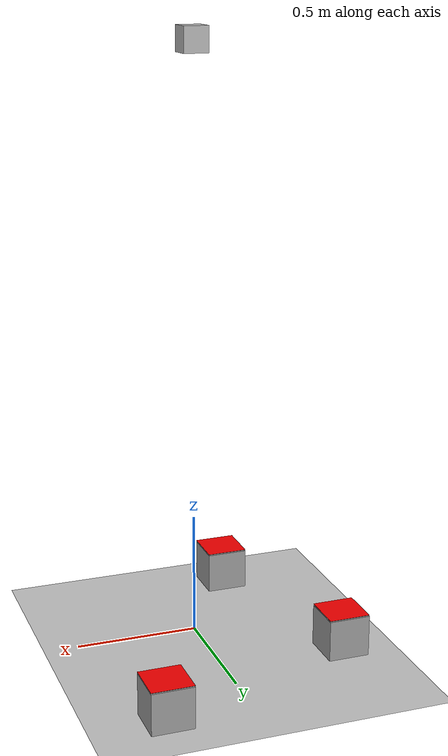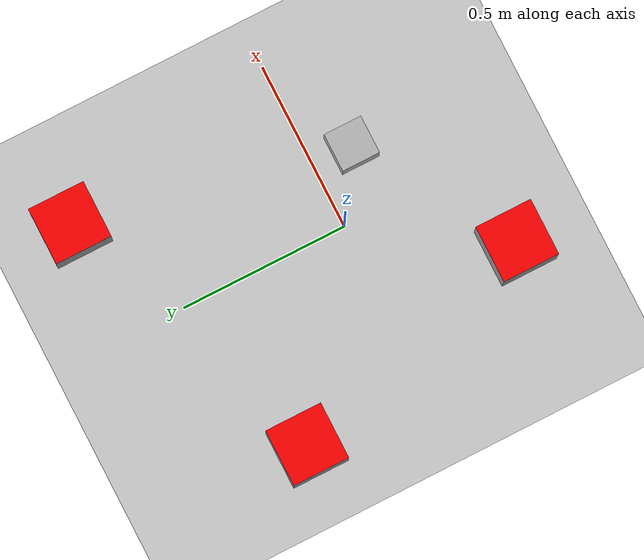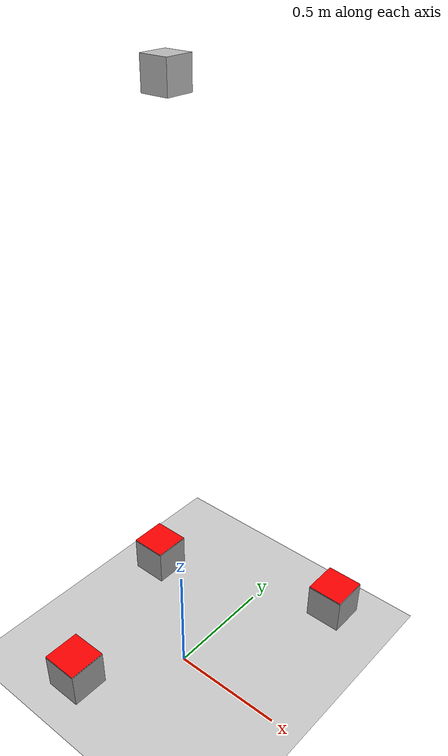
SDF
<sdf version="1.7">
 <world name="default">
  <light name="sun" type="directional">
   <pose>0 0 10 0 -0 0</pose>
   <diffuse>0.8 0.8 0.8 1</diffuse>
   <specular>0.2 0.2 0.2 1</specular>
   <attenuation>
    <range>1000</range>
    <constant>0.9</constant>
    <linear>0.01</linear>
    <quadratic>0.001</quadratic>
   </attenuation>
   <direction>-0.5 0.1 -0.9</direction>
   <spot><inner_angle>0</inner_angle><outer_angle>0</outer_angle><falloff>0</falloff></spot>
  </light>
  <model name="ground_plane">
   <static>1</static>
   <link name="link">
    <collision name="collision">
     <geometry><plane><normal>0 0 1</normal><size>100 100</size></plane></geometry>
     <surface>
      <contact><collide_bitmask>65535</collide_bitmask></contact>
      <friction><ode><mu>100</mu><mu2>50</mu2></ode></friction>
     </surface>
    </collision>
    <visual name="visual">
     <cast_shadows>0</cast_shadows>
     <geometry><plane><normal>0 0 1</normal><size>100 100</size></plane></geometry>
     <material>
      <script><uri>file://media/materials/scripts/gazebo.material</uri><name>Gazebo/Grey</name></script>
     </material>
    </visual>
   </link>
  </model>
  <gravity>0 0 -9.8</gravity>
  <magnetic_field>6e-06 2.3e-05 -4.2e-05</magnetic_field>
  <atmosphere type="adiabatic"/>
  <physics type="ode">
   <max_step_size>0.001</max_step_size>
   <real_time_factor>1</real_time_factor>
   <real_time_update_rate>1000</real_time_update_rate>
  </physics>
  <scene><ambient>0.4 0.4 0.4 1</ambient><background>0.7 0.7 0.7 1</background><shadows>1</shadows></scene>
  <spherical_coordinates>
   <surface_model>EARTH_WGS84</surface_model>
   <latitude_deg>0</latitude_deg>
   <longitude_deg>0</longitude_deg>
   <elevation>0</elevation>
   <heading_deg>0</heading_deg>
  </spherical_coordinates>
  <model name="camera">
   <static>1</static>
   <pose>-1e-05 0 2.41165 7e-06 1.57079 7e-06</pose>
   <link name="link">
    <inertial>
     <mass>0.1</mass>
     <inertia>
      <ixx>0.000166667</ixx>
      <iyy>0.000166667</iyy>
      <izz>0.000166667</izz>
      <ixy>0</ixy>
      <ixz>0</ixz>
      <iyz>0</iyz>
     </inertia>
    </inertial>
    <collision name="collision"><geometry><box><size>0.1 0.1 0.1</size></box></geometry></collision>
    <visual name="visual"><geometry><box><size>0.1 0.1 0.1</size></box></geometry></visual>
    <sensor name="camera" type="camera">
     <update_rate>30</update_rate>
     <camera name="head">
      <horizontal_fov>1.39626</horizontal_fov>
      <image><width>800</width><height>800</height><format>R8G8B8</format></image>
      <clip><near>0.02</near><far>300</far></clip>
      <noise><type>gaussian</type><mean>0</mean><stddev>0.007</stddev></noise>
     </camera>
     <plugin name="camera_controller" filename="libgazebo_ros_camera.so">
      <alwaysOn>1</alwaysOn>
      <updateRate>0.0</updateRate>
      <cameraName>rrbot/camera1</cameraName>
      <imageTopicName>image_raw</imageTopicName>
      <cameraInfoTopicName>camera_info</cameraInfoTopicName>
      <frameName>camera_link</frameName>
      <hackBaseline>0.07</hackBaseline>
      <distortionK1>0.0</distortionK1>
      <distortionK2>0.0</distortionK2>
      <distortionK3>0.0</distortionK3>
      <distortionT1>0.0</distortionT1>
      <distortionT2>0.0</distortionT2>
     </plugin>
    </sensor>
   </link>
  </model>
  <model name="obstacle">
   <link name="link">
    <inertial>
     <mass>9.826</mass>
     <inertia>
      <ixx>0.0473286</ixx>
      <ixy>0</ixy>
      <ixz>0</ixz>
      <iyy>0.0473286</iyy>
      <iyz>0</iyz>
      <izz>0.0473286</izz>
     </inertia>
    </inertial>
    <visual name="ModelPreview_8::link::visual_1">
     <geometry><box><size>0.17 0.17 0.001</size></box></geometry>
     <material>
      <script><name>Gazebo/Grey</name><uri>file://media/materials/scripts/gazebo.material</uri></script>
      <shader type="pixel"><normal_map>__default__</normal_map></shader>
      <ambient>1 0 0 1</ambient>
      <diffuse>1 0 0 1</diffuse>
      <specular>1 0 0 1</specular>
      <emissive>1 0 0 1</emissive>
     </material>
     <pose>0 0 0.09 0 -0 0</pose>
    </visual>
    <visual name="visual">
     <geometry><box><size>0.17 0.17 0.170001</size></box></geometry>
     <material>
      <script><name>Gazebo/Grey</name><uri>file://media/materials/scripts/gazebo.material</uri></script>
      <shader type="pixel"><normal_map>__default__</normal_map></shader>
      <ambient>0.3 0.3 0.3 1</ambient>
      <diffuse>0.7 0.7 0.7 1</diffuse>
      <specular>0.01 0.01 0.01 1</specular>
      <emissive>0 0 0 1</emissive>
     </material>
    </visual>
    <collision name="collision">
     <geometry><box><size>0.17 0.17 0.17</size></box></geometry>
     <surface>
      <friction>
       <ode><mu>1</mu><mu2>1</mu2><fdir1>0 0 0</fdir1><slip1>0</slip1><slip2>0</slip2></ode>
       <torsional>
        <coefficient>1</coefficient>
        <patch_radius>0</patch_radius>
        <surface_radius>0</surface_radius>
        <use_patch_radius>1</use_patch_radius>
        <ode><slip>0</slip></ode>
       </torsional>
      </friction>
      <bounce><restitution_coefficient>0</restitution_coefficient><threshold>1e+06</threshold></bounce>
      <contact>
       <collide_without_contact>0</collide_without_contact>
       <collide_without_contact_bitmask>1</collide_without_contact_bitmask>
       <collide_bitmask>1</collide_bitmask>
       <ode>
        <soft_cfm>0</soft_cfm>
        <soft_erp>0.2</soft_erp>
        <kp>1e+13</kp>
        <kd>1</kd>
        <max_vel>0.01</max_vel>
        <min_depth>0</min_depth>
       </ode>
       <bullet>
        <split_impulse>1</split_impulse>
        <split_impulse_penetration_threshold>-0.01</split_impulse_penetration_threshold>
        <soft_cfm>0</soft_cfm>
        <soft_erp>0.2</soft_erp>
        <kp>1e+13</kp>
        <kd>1</kd>
       </bullet>
      </contact>
     </surface>
    </collision>
   </link>
   <static>0</static>
   <pose>0.341692 0.675504 0.085 0 -0 0</pose>
  </model>
  <model name="obstacle_1">
   <link name="link">
    <inertial>
     <mass>9.826</mass>
     <inertia>
      <ixx>0.0473286</ixx>
      <ixy>0</ixy>
      <ixz>0</ixz>
      <iyy>0.0473286</iyy>
      <iyz>0</iyz>
      <izz>0.0473286</izz>
     </inertia>
    </inertial>
    <visual name="visual">
     <geometry><box><size>0.17 0.17 0.170001</size></box></geometry>
     <material>
      <script><name>Gazebo/Grey</name><uri>file://media/materials/scripts/gazebo.material</uri></script>
      <shader type="pixel"><normal_map>__default__</normal_map></shader>
      <ambient>0.3 0.3 0.3 1</ambient>
      <diffuse>0.7 0.7 0.7 1</diffuse>
      <specular>0.01 0.01 0.01 1</specular>
      <emissive>0 0 0 1</emissive>
     </material>
    </visual>
    <visual name="ModelPreview_8::link::visual_1">
     <geometry><box><size>0.17 0.17 0.001</size></box></geometry>
     <material>
      <script><name>Gazebo/Grey</name><uri>file://media/materials/scripts/gazebo.material</uri></script>
      <shader type="pixel"><normal_map>__default__</normal_map></shader>
      <ambient>1 0 0 1</ambient>
      <diffuse>1 0 0 1</diffuse>
      <specular>1 0 0 1</specular>
      <emissive>1 0 0 1</emissive>
     </material>
     <pose>0 0 0.09 0 -0 0</pose>
    </visual>
    <collision name="collision">
     <geometry><box><size>0.17 0.17 0.17</size></box></geometry>
     <surface>
      <friction>
       <ode><mu>1</mu><mu2>1</mu2><fdir1>0 0 0</fdir1><slip1>0</slip1><slip2>0</slip2></ode>
       <torsional>
        <coefficient>1</coefficient>
        <patch_radius>0</patch_radius>
        <surface_radius>0</surface_radius>
        <use_patch_radius>1</use_patch_radius>
        <ode><slip>0</slip></ode>
       </torsional>
      </friction>
      <bounce><restitution_coefficient>0</restitution_coefficient><threshold>1e+06</threshold></bounce>
      <contact>
       <collide_without_contact>0</collide_without_contact>
       <collide_without_contact_bitmask>1</collide_without_contact_bitmask>
       <collide_bitmask>1</collide_bitmask>
       <ode>
        <soft_cfm>0</soft_cfm>
        <soft_erp>0.2</soft_erp>
        <kp>1e+13</kp>
        <kd>1</kd>
        <max_vel>0.01</max_vel>
        <min_depth>0</min_depth>
       </ode>
       <bullet>
        <split_impulse>1</split_impulse>
        <split_impulse_penetration_threshold>-0.01</split_impulse_penetration_threshold>
        <soft_cfm>0</soft_cfm>
        <soft_erp>0.2</soft_erp>
        <kp>1e+13</kp>
        <kd>1</kd>
       </bullet>
      </contact>
     </surface>
    </collision>
   </link>
   <static>0</static>
   <pose>-0.499952 0.371651 0.084998 -1e-05 1.1e-05 7e-06</pose>
  </model>
  <model name="obstacle_3">
   <link name="link">
    <inertial>
     <mass>9.826</mass>
     <inertia>
      <ixx>0.0473286</ixx>
      <ixy>0</ixy>
      <ixz>0</ixz>
      <iyy>0.0473286</iyy>
      <iyz>0</iyz>
      <izz>0.0473286</izz>
     </inertia>
    </inertial>
    <visual name="visual">
     <geometry><box><size>0.17 0.17 0.170001</size></box></geometry>
     <material>
      <script><name>Gazebo/Grey</name><uri>file://media/materials/scripts/gazebo.material</uri></script>
      <shader type="pixel"><normal_map>__default__</normal_map></shader>
      <ambient>0.3 0.3 0.3 1</ambient>
      <diffuse>0.7 0.7 0.7 1</diffuse>
      <specular>0.01 0.01 0.01 1</specular>
      <emissive>0 0 0 1</emissive>
     </material>
    </visual>
    <visual name="ModelPreview_8::link::visual_1">
     <geometry><box><size>0.17 0.17 0.001</size></box></geometry>
     <material>
      <script><name>Gazebo/Grey</name><uri>file://media/materials/scripts/gazebo.material</uri></script>
      <shader type="pixel"><normal_map>__default__</normal_map></shader>
      <ambient>1 0 0 1</ambient>
      <diffuse>1 0 0 1</diffuse>
      <specular>1 0 0 1</specular>
      <emissive>1 0 0 1</emissive>
     </material>
     <pose>0 0 0.09 0 -0 0</pose>
    </visual>
    <collision name="collision">
     <geometry><box><size>0.17 0.17 0.17</size></box></geometry>
     <surface>
      <friction>
       <ode><mu>1</mu><mu2>1</mu2><fdir1>0 0 0</fdir1><slip1>0</slip1><slip2>0</slip2></ode>
       <torsional>
        <coefficient>1</coefficient>
        <patch_radius>0</patch_radius>
        <surface_radius>0</surface_radius>
        <use_patch_radius>1</use_patch_radius>
        <ode><slip>0</slip></ode>
       </torsional>
      </friction>
      <bounce><restitution_coefficient>0</restitution_coefficient><threshold>1e+06</threshold></bounce>
      <contact>
       <collide_without_contact>0</collide_without_contact>
       <collide_without_contact_bitmask>1</collide_without_contact_bitmask>
       <collide_bitmask>1</collide_bitmask>
       <ode>
        <soft_cfm>0</soft_cfm>
        <soft_erp>0.2</soft_erp>
        <kp>1e+13</kp>
        <kd>1</kd>
        <max_vel>0.01</max_vel>
        <min_depth>0</min_depth>
       </ode>
       <bullet>
        <split_impulse>1</split_impulse>
        <split_impulse_penetration_threshold>-0.01</split_impulse_penetration_threshold>
        <soft_cfm>0</soft_cfm>
        <soft_erp>0.2</soft_erp>
        <kp>1e+13</kp>
        <kd>1</kd>
       </bullet>
      </contact>
     </surface>
    </collision>
   </link>
   <static>0</static>
   <pose>-0.263134 -0.398912 0.085 0 0 -3e-06</pose>
  </model>
 </world>
</sdf>
